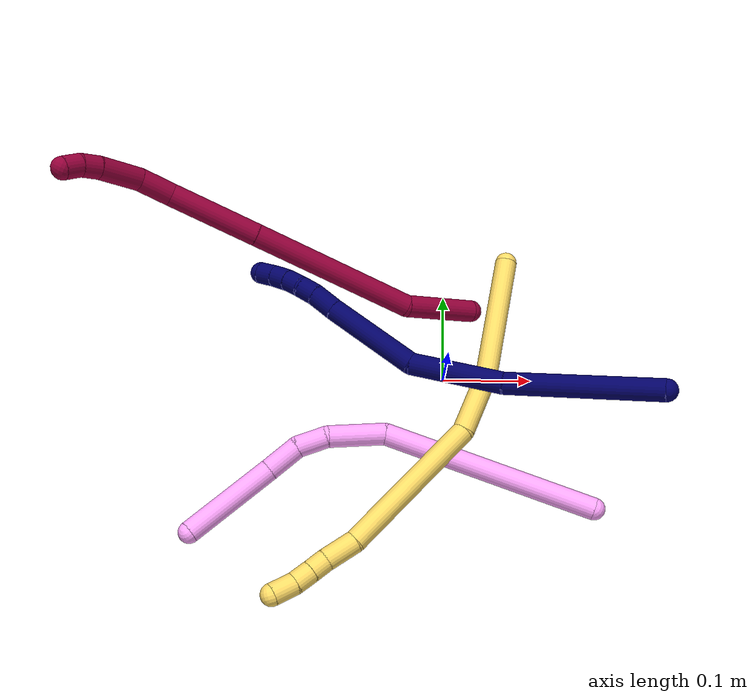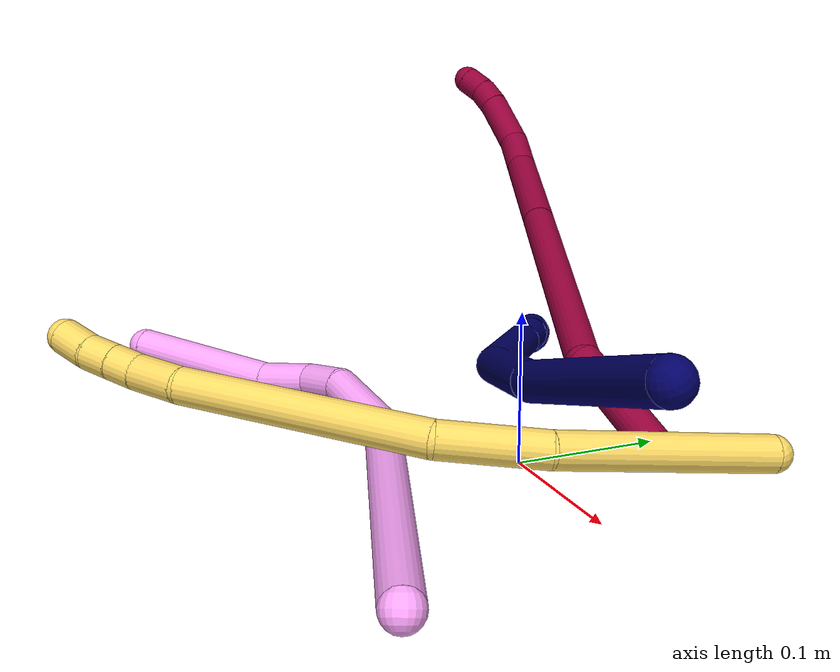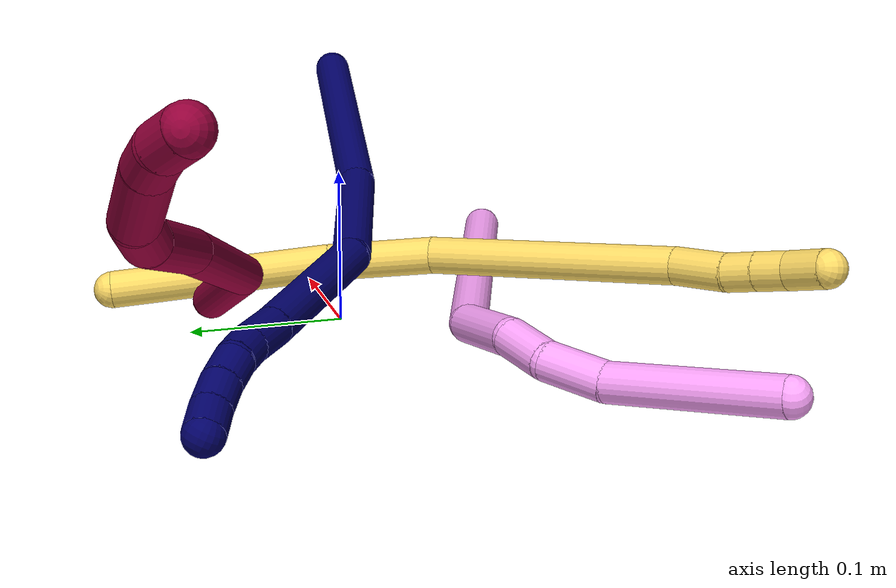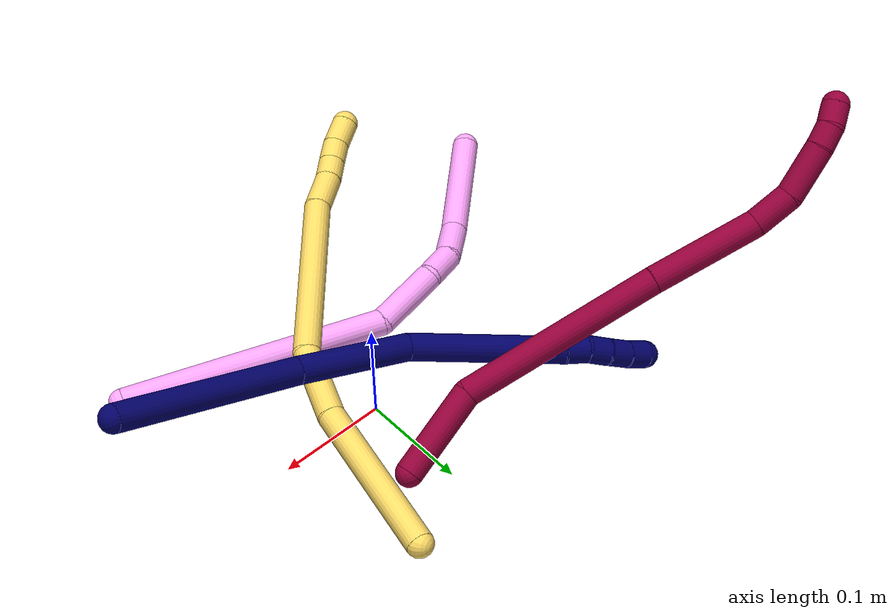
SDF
<sdf version="1.7">
 <world name="default">
  <model name="photoneo_s_sensor">
   <static>1</static>
   <pose>0 0 2 1.57079 1.57079 3.14159</pose>
   <link name="link">
    <inertial><mass>0.1</mass></inertial>
    <sensor name="sensor" type="depth">
     <update_rate>30</update_rate>
     <camera>
      <horizontal_fov>1.22</horizontal_fov>
      <image><width>1920</width><height>1200</height><format>B8G8R8</format></image>
      <clip><near>0.1</near><far>4</far></clip>
      <depth_camera><output>points</output></depth_camera>
     </camera>
     <plugin name="camera_plugin" filename="libgazebo_ros_depth_camera.so">
      <baseline>0.2</baseline>
      <alwaysOn>1</alwaysOn>
      <updateRate>0.0</updateRate>
      <cameraName>camera_ir</cameraName>
      <imageTopicName>/camera/color/image_raw</imageTopicName>
      <cameraInfoTopicName>/camera/color/camera_info</cameraInfoTopicName>
      <depthImageTopicName>/camera/depth/image_raw</depthImageTopicName>
      <depthImageCameraInfoTopicName>/camera/depth/camera_info</depthImageCameraInfoTopicName>
      <pointCloudTopicName>/camera/depth/points</pointCloudTopicName>
      <frameName>fr_optical</frameName>
      <pointCloudCutoff>0.1</pointCloudCutoff>
      <pointCloudCutoffMax>2.0</pointCloudCutoffMax>
      <distortionK1>0</distortionK1>
      <distortionK2>0</distortionK2>
      <distortionK3>0</distortionK3>
      <distortionT1>0</distortionT1>
      <distortionT2>0</distortionT2>
      <CxPrime>0</CxPrime>
      <Cx>0</Cx>
      <Cy>0</Cy>
      <focalLength>0</focalLength>
      <hackBaseline>0</hackBaseline>
     </plugin>
    </sensor>
   </link>
  </model>
  <model name="bin">
   <static>1</static>
   <link name="bottom">
    <collision name="collision-bottom">
     <pose>0 0 -0.01 0 -0 0</pose>
     <geometry><box><size>0.8 0.6 0.02</size></box></geometry>
     <surface>
      <friction><ode><mu>100</mu><mu2>100</mu2></ode></friction>
      <contact><collide_bitmask>65535</collide_bitmask></contact>
     </surface>
    </collision>
   </link>
   <link name="west_wall">
    <collision name="collision-west_wall">
     <pose>-0.41 0 0.1 0 -0 0</pose>
     <geometry><box><size>0.02 0.6 0.2</size></box></geometry>
     <surface>
      <friction><ode><mu>100</mu><mu2>100</mu2></ode></friction>
      <contact><collide_bitmask>65535</collide_bitmask></contact>
     </surface>
    </collision>
   </link>
   <link name="east_wall">
    <collision name="collision-east_wall">
     <pose>0.41 0 0.1 0 -0 0</pose>
     <geometry><box><size>0.02 0.6 0.2</size></box></geometry>
     <surface>
      <friction><ode><mu>100</mu><mu2>100</mu2></ode></friction>
      <contact><collide_bitmask>65535</collide_bitmask></contact>
     </surface>
    </collision>
   </link>
   <link name="south_wall">
    <collision name="collision-south_wall">
     <pose>0 -0.31 0.1 0 -0 0</pose>
     <geometry><box><size>0.8 0.02 0.2</size></box></geometry>
     <surface>
      <friction><ode><mu>100</mu><mu2>100</mu2></ode></friction>
      <contact><collide_bitmask>65535</collide_bitmask></contact>
     </surface>
    </collision>
   </link>
   <link name="north_wall">
    <collision name="collision-north_wall">
     <pose>0 0.31 0.1 0 -0 0</pose>
     <geometry><box><size>0.8 0.02 0.2</size></box></geometry>
     <surface>
      <friction><ode><mu>100</mu><mu2>100</mu2></ode></friction>
      <contact><collide_bitmask>65535</collide_bitmask></contact>
     </surface>
    </collision>
   </link>
  </model>
  <model name="4">
   <static>0</static>
   <link name="4">
    <collision name="collision-cylinder-e_1_1_4">
     <pose>-0.096848 0.048697 -0.05823 -2.44511 -0.906017 1.85997</pose>
     <geometry><cylinder><radius>0.0125</radius><length>0.246103</length></cylinder></geometry>
     <surface>
      <friction><ode><mu>1.16</mu><mu2>1.16</mu2><slip1>0</slip1><slip2>0</slip2></ode></friction>
      <contact><ode><kp>1e+06</kp><kd>1</kd><max_vel>0</max_vel><min_depth>0.001</min_depth></ode></contact>
     </surface>
    </collision>
    <visual name="visual-cylinder-e_1_1_4">
     <pose>-0.096848 0.048697 -0.05823 -2.44511 -0.906017 1.85997</pose>
     <geometry><cylinder><radius>0.0125</radius><length>0.246103</length></cylinder></geometry>
     <material><ambient>1 0.65098 0.996078 1</ambient></material>
    </visual>
    <collision name="collision-cylinder-e_2_4_5">
     <pose>-0.208356 0.120732 -0.134238 -2.22182 -0.463394 0.889077</pose>
     <geometry><cylinder><radius>0.0125</radius><length>0.065593</length></cylinder></geometry>
     <surface>
      <friction><ode><mu>1.16</mu><mu2>1.16</mu2><slip1>0</slip1><slip2>0</slip2></ode></friction>
      <contact><ode><kp>1e+06</kp><kd>1</kd><max_vel>0</max_vel><min_depth>0.001</min_depth></ode></contact>
     </surface>
    </collision>
    <visual name="visual-cylinder-e_2_4_5">
     <pose>-0.208356 0.120732 -0.134238 -2.22182 -0.463394 0.889077</pose>
     <geometry><cylinder><radius>0.0125</radius><length>0.065593</length></cylinder></geometry>
     <material><ambient>1 0.65098 0.996078 1</ambient></material>
    </visual>
    <collision name="collision-cylinder-e_3_5_6">
     <pose>-0.230423 0.159637 -0.155932 -1.81718 -0.432347 0.549117</pose>
     <geometry><cylinder><radius>0.0125</radius><length>0.035358</length></cylinder></geometry>
     <surface>
      <friction><ode><mu>1.16</mu><mu2>1.16</mu2><slip1>0</slip1><slip2>0</slip2></ode></friction>
      <contact><ode><kp>1e+06</kp><kd>1</kd><max_vel>0</max_vel><min_depth>0.001</min_depth></ode></contact>
     </surface>
    </collision>
    <visual name="visual-cylinder-e_3_5_6">
     <pose>-0.230423 0.159637 -0.155932 -1.81718 -0.432347 0.549117</pose>
     <geometry><cylinder><radius>0.0125</radius><length>0.035358</length></cylinder></geometry>
     <material><ambient>1 0.65098 0.996078 1</ambient></material>
    </visual>
    <collision name="collision-cylinder-e_4_6_7">
     <pose>-0.239839 0.195512 -0.161768 -1.66507 -0.098128 0.107826</pose>
     <geometry><cylinder><radius>0.0125</radius><length>0.040995</length></cylinder></geometry>
     <surface>
      <friction><ode><mu>1.16</mu><mu2>1.16</mu2><slip1>0</slip1><slip2>0</slip2></ode></friction>
      <contact><ode><kp>1e+06</kp><kd>1</kd><max_vel>0</max_vel><min_depth>0.001</min_depth></ode></contact>
     </surface>
    </collision>
    <visual name="visual-cylinder-e_4_6_7">
     <pose>-0.239839 0.195512 -0.161768 -1.66507 -0.098128 0.107826</pose>
     <geometry><cylinder><radius>0.0125</radius><length>0.040995</length></cylinder></geometry>
     <material><ambient>1 0.65098 0.996078 1</ambient></material>
    </visual>
    <collision name="collision-cylinder-e_5_7_2">
     <pose>-0.239338 0.269378 -0.179769 -1.86249 0.044829 -0.060259</pose>
     <geometry><cylinder><radius>0.0125</radius><length>0.111951</length></cylinder></geometry>
     <surface>
      <friction><ode><mu>1.16</mu><mu2>1.16</mu2><slip1>0</slip1><slip2>0</slip2></ode></friction>
      <contact><ode><kp>1e+06</kp><kd>1</kd><max_vel>0</max_vel><min_depth>0.001</min_depth></ode></contact>
     </surface>
    </collision>
    <visual name="visual-cylinder-e_5_7_2">
     <pose>-0.239338 0.269378 -0.179769 -1.86249 0.044829 -0.060259</pose>
     <geometry><cylinder><radius>0.0125</radius><length>0.111951</length></cylinder></geometry>
     <material><ambient>1 0.65098 0.996078 1</ambient></material>
    </visual>
    <collision name="collision-sphere-2">
     <pose>-0.23683 0.322935 -0.19585 0 -0 0</pose>
     <geometry><sphere><radius>0.0125</radius></sphere></geometry>
     <surface>
      <friction><ode><mu>1.16</mu><mu2>1.16</mu2><slip1>0</slip1><slip2>0</slip2></ode></friction>
      <contact><ode><kp>1e+06</kp><kd>1</kd><max_vel>0</max_vel><min_depth>0.001</min_depth></ode></contact>
     </surface>
    </collision>
    <visual name="visual-sphere-2">
     <pose>-0.23683 0.322935 -0.19585 0 -0 0</pose>
     <geometry><sphere><radius>0.0125</radius></sphere></geometry>
     <material><ambient>1 0.65098 0.996078 1</ambient></material>
    </visual>
    <collision name="collision-sphere-7">
     <pose>-0.241847 0.21582 -0.163688 0 -0 0</pose>
     <geometry><sphere><radius>0.0125</radius></sphere></geometry>
     <surface>
      <friction><ode><mu>1.16</mu><mu2>1.16</mu2><slip1>0</slip1><slip2>0</slip2></ode></friction>
      <contact><ode><kp>1e+06</kp><kd>1</kd><max_vel>0</max_vel><min_depth>0.001</min_depth></ode></contact>
     </surface>
    </collision>
    <visual name="visual-sphere-7">
     <pose>-0.241847 0.21582 -0.163688 0 -0 0</pose>
     <geometry><sphere><radius>0.0125</radius></sphere></geometry>
     <material><ambient>1 0.65098 0.996078 1</ambient></material>
    </visual>
    <collision name="collision-sphere-6">
     <pose>-0.23783 0.175204 -0.159847 0 -0 0</pose>
     <geometry><sphere><radius>0.0125</radius></sphere></geometry>
     <surface>
      <friction><ode><mu>1.16</mu><mu2>1.16</mu2><slip1>0</slip1><slip2>0</slip2></ode></friction>
      <contact><ode><kp>1e+06</kp><kd>1</kd><max_vel>0</max_vel><min_depth>0.001</min_depth></ode></contact>
     </surface>
    </collision>
    <visual name="visual-sphere-6">
     <pose>-0.23783 0.175204 -0.159847 0 -0 0</pose>
     <geometry><sphere><radius>0.0125</radius></sphere></geometry>
     <material><ambient>1 0.65098 0.996078 1</ambient></material>
    </visual>
    <collision name="collision-sphere-5">
     <pose>-0.223015 0.144069 -0.152017 0 -0 0</pose>
     <geometry><sphere><radius>0.0125</radius></sphere></geometry>
     <surface>
      <friction><ode><mu>1.16</mu><mu2>1.16</mu2><slip1>0</slip1><slip2>0</slip2></ode></friction>
      <contact><ode><kp>1e+06</kp><kd>1</kd><max_vel>0</max_vel><min_depth>0.001</min_depth></ode></contact>
     </surface>
    </collision>
    <visual name="visual-sphere-5">
     <pose>-0.223015 0.144069 -0.152017 0 -0 0</pose>
     <geometry><sphere><radius>0.0125</radius></sphere></geometry>
     <material><ambient>1 0.65098 0.996078 1</ambient></material>
    </visual>
    <collision name="collision-sphere-1">
     <geometry><sphere><radius>0.0125</radius></sphere></geometry>
     <surface>
      <friction><ode><mu>1.16</mu><mu2>1.16</mu2><slip1>0</slip1><slip2>0</slip2></ode></friction>
      <contact><ode><kp>1e+06</kp><kd>1</kd><max_vel>0</max_vel><min_depth>0.001</min_depth></ode></contact>
     </surface>
    </collision>
    <visual name="visual-sphere-1">
     <geometry><sphere><radius>0.0125</radius></sphere></geometry>
     <material><ambient>1 0.65098 0.996078 1</ambient></material>
    </visual>
    <collision name="collision-sphere-4">
     <pose>-0.193696 0.097394 -0.11646 0 -0 0</pose>
     <geometry><sphere><radius>0.0125</radius></sphere></geometry>
     <surface>
      <friction><ode><mu>1.16</mu><mu2>1.16</mu2><slip1>0</slip1><slip2>0</slip2></ode></friction>
      <contact><ode><kp>1e+06</kp><kd>1</kd><max_vel>0</max_vel><min_depth>0.001</min_depth></ode></contact>
     </surface>
    </collision>
    <visual name="visual-sphere-4">
     <pose>-0.193696 0.097394 -0.11646 0 -0 0</pose>
     <geometry><sphere><radius>0.0125</radius></sphere></geometry>
     <material><ambient>1 0.65098 0.996078 1</ambient></material>
    </visual>
    <inertial>
     <pose>-0.16455 0.12744 -0.110812 0 -0 0</pose>
     <mass>0.5</mass>
     <inertia>
      <ixx>0.000662</ixx>
      <ixy>0</ixy>
      <ixz>0</ixz>
      <iyy>0.001621</iyy>
      <iyz>0</iyz>
      <izz>0.000337</izz>
     </inertia>
    </inertial>
   </link>
   <pose>0.165915 -0.15013 0.012464 -2.95308 -0.465227 -0.83789</pose>
  </model>
  <model name="5">
   <static>0</static>
   <link name="5">
    <collision name="collision-cylinder-e_1_1_4">
     <pose>-0.009115 -0.039124 0.061988 0.563012 -0.123715 -0.035818</pose>
     <geometry><cylinder><radius>0.0125</radius><length>0.147733</length></cylinder></geometry>
     <surface>
      <friction><ode><mu>1.16</mu><mu2>1.16</mu2><slip1>0</slip1><slip2>0</slip2></ode></friction>
      <contact><ode><kp>1e+06</kp><kd>1</kd><max_vel>0</max_vel><min_depth>0.001</min_depth></ode></contact>
     </surface>
    </collision>
    <visual name="visual-cylinder-e_1_1_4">
     <pose>-0.009115 -0.039124 0.061988 0.563012 -0.123715 -0.035818</pose>
     <geometry><cylinder><radius>0.0125</radius><length>0.147733</length></cylinder></geometry>
     <material><ambient>1 0.858824 0.4 1</ambient></material>
    </visual>
    <collision name="collision-cylinder-e_2_4_5">
     <pose>-0.020016 -0.102823 0.15022 0.752575 -0.049632 -0.019614</pose>
     <geometry><cylinder><radius>0.0125</radius><length>0.071996</length></cylinder></geometry>
     <surface>
      <friction><ode><mu>1.16</mu><mu2>1.16</mu2><slip1>0</slip1><slip2>0</slip2></ode></friction>
      <contact><ode><kp>1e+06</kp><kd>1</kd><max_vel>0</max_vel><min_depth>0.001</min_depth></ode></contact>
     </surface>
    </collision>
    <visual name="visual-cylinder-e_2_4_5">
     <pose>-0.020016 -0.102823 0.15022 0.752575 -0.049632 -0.019614</pose>
     <geometry><cylinder><radius>0.0125</radius><length>0.071996</length></cylinder></geometry>
     <material><ambient>1 0.858824 0.4 1</ambient></material>
    </visual>
    <collision name="collision-cylinder-e_3_5_6">
     <pose>-0.014124 -0.203991 0.216793 1.08613 0.08847 0.053423</pose>
     <geometry><cylinder><radius>0.0125</radius><length>0.173804</length></cylinder></geometry>
     <surface>
      <friction><ode><mu>1.16</mu><mu2>1.16</mu2><slip1>0</slip1><slip2>0</slip2></ode></friction>
      <contact><ode><kp>1e+06</kp><kd>1</kd><max_vel>0</max_vel><min_depth>0.001</min_depth></ode></contact>
     </surface>
    </collision>
    <visual name="visual-cylinder-e_3_5_6">
     <pose>-0.014124 -0.203991 0.216793 1.08613 0.08847 0.053423</pose>
     <geometry><cylinder><radius>0.0125</radius><length>0.173804</length></cylinder></geometry>
     <material><ambient>1 0.858824 0.4 1</ambient></material>
    </visual>
    <collision name="collision-cylinder-e_4_6_7">
     <pose>-0.003203 -0.29834 0.262091 1.29804 0.174094 0.13222</pose>
     <geometry><cylinder><radius>0.0125</radius><length>0.037443</length></cylinder></geometry>
     <surface>
      <friction><ode><mu>1.16</mu><mu2>1.16</mu2><slip1>0</slip1><slip2>0</slip2></ode></friction>
      <contact><ode><kp>1e+06</kp><kd>1</kd><max_vel>0</max_vel><min_depth>0.001</min_depth></ode></contact>
     </surface>
    </collision>
    <visual name="visual-cylinder-e_4_6_7">
     <pose>-0.003203 -0.29834 0.262091 1.29804 0.174094 0.13222</pose>
     <geometry><cylinder><radius>0.0125</radius><length>0.037443</length></cylinder></geometry>
     <material><ambient>1 0.858824 0.4 1</ambient></material>
    </visual>
    <collision name="collision-cylinder-e_5_7_8">
     <pose>0.000216 -0.325795 0.270419 1.23717 0.017141 0.012201</pose>
     <geometry><cylinder><radius>0.0125</radius><length>0.02053</length></cylinder></geometry>
     <surface>
      <friction><ode><mu>1.16</mu><mu2>1.16</mu2><slip1>0</slip1><slip2>0</slip2></ode></friction>
      <contact><ode><kp>1e+06</kp><kd>1</kd><max_vel>0</max_vel><min_depth>0.001</min_depth></ode></contact>
     </surface>
    </collision>
    <visual name="visual-cylinder-e_5_7_8">
     <pose>0.000216 -0.325795 0.270419 1.23717 0.017141 0.012201</pose>
     <geometry><cylinder><radius>0.0125</radius><length>0.02053</length></cylinder></geometry>
     <material><ambient>1 0.858824 0.4 1</ambient></material>
    </visual>
    <collision name="collision-cylinder-e_6_8_9">
     <pose>0.000751 -0.345703 0.277118 1.2548 0.033436 0.024247</pose>
     <geometry><cylinder><radius>0.0125</radius><length>0.021498</length></cylinder></geometry>
     <surface>
      <friction><ode><mu>1.16</mu><mu2>1.16</mu2><slip1>0</slip1><slip2>0</slip2></ode></friction>
      <contact><ode><kp>1e+06</kp><kd>1</kd><max_vel>0</max_vel><min_depth>0.001</min_depth></ode></contact>
     </surface>
    </collision>
    <visual name="visual-cylinder-e_6_8_9">
     <pose>0.000751 -0.345703 0.277118 1.2548 0.033436 0.024247</pose>
     <geometry><cylinder><radius>0.0125</radius><length>0.021498</length></cylinder></geometry>
     <material><ambient>1 0.858824 0.4 1</ambient></material>
    </visual>
    <collision name="collision-cylinder-e_7_9_2">
     <pose>0.001454 -0.369272 0.28237 1.42852 0.025457 0.02207</pose>
     <geometry><cylinder><radius>0.0125</radius><length>0.026997</length></cylinder></geometry>
     <surface>
      <friction><ode><mu>1.16</mu><mu2>1.16</mu2><slip1>0</slip1><slip2>0</slip2></ode></friction>
      <contact><ode><kp>1e+06</kp><kd>1</kd><max_vel>0</max_vel><min_depth>0.001</min_depth></ode></contact>
     </surface>
    </collision>
    <visual name="visual-cylinder-e_7_9_2">
     <pose>0.001454 -0.369272 0.28237 1.42852 0.025457 0.02207</pose>
     <geometry><cylinder><radius>0.0125</radius><length>0.026997</length></cylinder></geometry>
     <material><ambient>1 0.858824 0.4 1</ambient></material>
    </visual>
    <collision name="collision-sphere-2">
     <pose>0.001798 -0.382629 0.284284 0 -0 0</pose>
     <geometry><sphere><radius>0.0125</radius></sphere></geometry>
     <surface>
      <friction><ode><mu>1.16</mu><mu2>1.16</mu2><slip1>0</slip1><slip2>0</slip2></ode></friction>
      <contact><ode><kp>1e+06</kp><kd>1</kd><max_vel>0</max_vel><min_depth>0.001</min_depth></ode></contact>
     </surface>
    </collision>
    <visual name="visual-sphere-2">
     <pose>0.001798 -0.382629 0.284284 0 -0 0</pose>
     <geometry><sphere><radius>0.0125</radius></sphere></geometry>
     <material><ambient>1 0.858824 0.4 1</ambient></material>
    </visual>
    <collision name="collision-sphere-9">
     <pose>0.001111 -0.355914 0.280457 0 -0 0</pose>
     <geometry><sphere><radius>0.0125</radius></sphere></geometry>
     <surface>
      <friction><ode><mu>1.16</mu><mu2>1.16</mu2><slip1>0</slip1><slip2>0</slip2></ode></friction>
      <contact><ode><kp>1e+06</kp><kd>1</kd><max_vel>0</max_vel><min_depth>0.001</min_depth></ode></contact>
     </surface>
    </collision>
    <visual name="visual-sphere-9">
     <pose>0.001111 -0.355914 0.280457 0 -0 0</pose>
     <geometry><sphere><radius>0.0125</radius></sphere></geometry>
     <material><ambient>1 0.858824 0.4 1</ambient></material>
    </visual>
    <collision name="collision-sphere-4">
     <pose>-0.01823 -0.078248 0.123976 0 -0 0</pose>
     <geometry><sphere><radius>0.0125</radius></sphere></geometry>
     <surface>
      <friction><ode><mu>1.16</mu><mu2>1.16</mu2><slip1>0</slip1><slip2>0</slip2></ode></friction>
      <contact><ode><kp>1e+06</kp><kd>1</kd><max_vel>0</max_vel><min_depth>0.001</min_depth></ode></contact>
     </surface>
    </collision>
    <visual name="visual-sphere-4">
     <pose>-0.01823 -0.078248 0.123976 0 -0 0</pose>
     <geometry><sphere><radius>0.0125</radius></sphere></geometry>
     <material><ambient>1 0.858824 0.4 1</ambient></material>
    </visual>
    <collision name="collision-sphere-1">
     <geometry><sphere><radius>0.0125</radius></sphere></geometry>
     <surface>
      <friction><ode><mu>1.16</mu><mu2>1.16</mu2><slip1>0</slip1><slip2>0</slip2></ode></friction>
      <contact><ode><kp>1e+06</kp><kd>1</kd><max_vel>0</max_vel><min_depth>0.001</min_depth></ode></contact>
     </surface>
    </collision>
    <visual name="visual-sphere-1">
     <geometry><sphere><radius>0.0125</radius></sphere></geometry>
     <material><ambient>1 0.858824 0.4 1</ambient></material>
    </visual>
    <collision name="collision-sphere-8">
     <pose>0.000392 -0.335492 0.27378 0 -0 0</pose>
     <geometry><sphere><radius>0.0125</radius></sphere></geometry>
     <surface>
      <friction><ode><mu>1.16</mu><mu2>1.16</mu2><slip1>0</slip1><slip2>0</slip2></ode></friction>
      <contact><ode><kp>1e+06</kp><kd>1</kd><max_vel>0</max_vel><min_depth>0.001</min_depth></ode></contact>
     </surface>
    </collision>
    <visual name="visual-sphere-8">
     <pose>0.000392 -0.335492 0.27378 0 -0 0</pose>
     <geometry><sphere><radius>0.0125</radius></sphere></geometry>
     <material><ambient>1 0.858824 0.4 1</ambient></material>
    </visual>
    <collision name="collision-sphere-5">
     <pose>-0.021802 -0.127398 0.176463 0 -0 0</pose>
     <geometry><sphere><radius>0.0125</radius></sphere></geometry>
     <surface>
      <friction><ode><mu>1.16</mu><mu2>1.16</mu2><slip1>0</slip1><slip2>0</slip2></ode></friction>
      <contact><ode><kp>1e+06</kp><kd>1</kd><max_vel>0</max_vel><min_depth>0.001</min_depth></ode></contact>
     </surface>
    </collision>
    <visual name="visual-sphere-5">
     <pose>-0.021802 -0.127398 0.176463 0 -0 0</pose>
     <geometry><sphere><radius>0.0125</radius></sphere></geometry>
     <material><ambient>1 0.858824 0.4 1</ambient></material>
    </visual>
    <collision name="collision-sphere-6">
     <pose>-0.006446 -0.280584 0.257124 0 -0 0</pose>
     <geometry><sphere><radius>0.0125</radius></sphere></geometry>
     <surface>
      <friction><ode><mu>1.16</mu><mu2>1.16</mu2><slip1>0</slip1><slip2>0</slip2></ode></friction>
      <contact><ode><kp>1e+06</kp><kd>1</kd><max_vel>0</max_vel><min_depth>0.001</min_depth></ode></contact>
     </surface>
    </collision>
    <visual name="visual-sphere-6">
     <pose>-0.006446 -0.280584 0.257124 0 -0 0</pose>
     <geometry><sphere><radius>0.0125</radius></sphere></geometry>
     <material><ambient>1 0.858824 0.4 1</ambient></material>
    </visual>
    <collision name="collision-sphere-7">
     <pose>4e-05 -0.316097 0.267058 0 -0 0</pose>
     <geometry><sphere><radius>0.0125</radius></sphere></geometry>
     <surface>
      <friction><ode><mu>1.16</mu><mu2>1.16</mu2><slip1>0</slip1><slip2>0</slip2></ode></friction>
      <contact><ode><kp>1e+06</kp><kd>1</kd><max_vel>0</max_vel><min_depth>0.001</min_depth></ode></contact>
     </surface>
    </collision>
    <visual name="visual-sphere-7">
     <pose>4e-05 -0.316097 0.267058 0 -0 0</pose>
     <geometry><sphere><radius>0.0125</radius></sphere></geometry>
     <material><ambient>1 0.858824 0.4 1</ambient></material>
    </visual>
    <inertial>
     <pose>-0.010605 -0.167795 0.173196 0 -0 0</pose>
     <mass>0.5</mass>
     <inertia>
      <ixx>0.000774</ixx>
      <ixy>0</ixy>
      <ixz>0</ixz>
      <iyy>0.000453</iyy>
      <iyz>0</iyz>
      <izz>0.000589</izz>
     </inertia>
    </inertial>
   </link>
   <pose>0.073555 0.141653 0.01158 -2.17748 1.20489 2.87647</pose>
  </model>
  <model name="7">
   <static>0</static>
   <link name="7">
    <collision name="collision-cylinder-e_1_1_4">
     <pose>0.011666 0.079956 0.031009 -1.20083 0.135202 -0.092654</pose>
     <geometry><cylinder><radius>0.0125</radius><length>0.173097</length></cylinder></geometry>
     <surface>
      <friction><ode><mu>1.16</mu><mu2>1.16</mu2><slip1>0</slip1><slip2>0</slip2></ode></friction>
      <contact><ode><kp>1e+06</kp><kd>1</kd><max_vel>0</max_vel><min_depth>0.001</min_depth></ode></contact>
     </surface>
    </collision>
    <visual name="visual-cylinder-e_1_1_4">
     <pose>0.011666 0.079956 0.031009 -1.20083 0.135202 -0.092654</pose>
     <geometry><cylinder><radius>0.0125</radius><length>0.173097</length></cylinder></geometry>
     <material><ambient>0.003922 0 0.403922 1</ambient></material>
    </visual>
    <collision name="collision-cylinder-e_2_4_5">
     <pose>0.021654 0.209803 0.080172 -1.22182 -0.031597 0.022127</pose>
     <geometry><cylinder><radius>0.0125</radius><length>0.106235</length></cylinder></geometry>
     <surface>
      <friction><ode><mu>1.16</mu><mu2>1.16</mu2><slip1>0</slip1><slip2>0</slip2></ode></friction>
      <contact><ode><kp>1e+06</kp><kd>1</kd><max_vel>0</max_vel><min_depth>0.001</min_depth></ode></contact>
     </surface>
    </collision>
    <visual name="visual-cylinder-e_2_4_5">
     <pose>0.021654 0.209803 0.080172 -1.22182 -0.031597 0.022127</pose>
     <geometry><cylinder><radius>0.0125</radius><length>0.106235</length></cylinder></geometry>
     <material><ambient>0.003922 0 0.403922 1</ambient></material>
    </visual>
    <collision name="collision-cylinder-e_3_5_6">
     <pose>-0.001998 0.305266 0.121586 -1.09886 -0.405651 0.250533</pose>
     <geometry><cylinder><radius>0.0125</radius><length>0.111368</length></cylinder></geometry>
     <surface>
      <friction><ode><mu>1.16</mu><mu2>1.16</mu2><slip1>0</slip1><slip2>0</slip2></ode></friction>
      <contact><ode><kp>1e+06</kp><kd>1</kd><max_vel>0</max_vel><min_depth>0.001</min_depth></ode></contact>
     </surface>
    </collision>
    <visual name="visual-cylinder-e_3_5_6">
     <pose>-0.001998 0.305266 0.121586 -1.09886 -0.405651 0.250533</pose>
     <geometry><cylinder><radius>0.0125</radius><length>0.111368</length></cylinder></geometry>
     <material><ambient>0.003922 0 0.403922 1</ambient></material>
    </visual>
    <collision name="collision-cylinder-e_4_6_7">
     <pose>-0.030457 0.362536 0.150653 -1.11004 -0.460881 0.288902</pose>
     <geometry><cylinder><radius>0.0125</radius><length>0.029163</length></cylinder></geometry>
     <surface>
      <friction><ode><mu>1.16</mu><mu2>1.16</mu2><slip1>0</slip1><slip2>0</slip2></ode></friction>
      <contact><ode><kp>1e+06</kp><kd>1</kd><max_vel>0</max_vel><min_depth>0.001</min_depth></ode></contact>
     </surface>
    </collision>
    <visual name="visual-cylinder-e_4_6_7">
     <pose>-0.030457 0.362536 0.150653 -1.11004 -0.460881 0.288902</pose>
     <geometry><cylinder><radius>0.0125</radius><length>0.029163</length></cylinder></geometry>
     <material><ambient>0.003922 0 0.403922 1</ambient></material>
    </visual>
    <collision name="collision-cylinder-e_5_7_8">
     <pose>-0.040181 0.382966 0.160274 -1.15896 -0.327736 0.215581</pose>
     <geometry><cylinder><radius>0.0125</radius><length>0.020129</length></cylinder></geometry>
     <surface>
      <friction><ode><mu>1.16</mu><mu2>1.16</mu2><slip1>0</slip1><slip2>0</slip2></ode></friction>
      <contact><ode><kp>1e+06</kp><kd>1</kd><max_vel>0</max_vel><min_depth>0.001</min_depth></ode></contact>
     </surface>
    </collision>
    <visual name="visual-cylinder-e_5_7_8">
     <pose>-0.040181 0.382966 0.160274 -1.15896 -0.327736 0.215581</pose>
     <geometry><cylinder><radius>0.0125</radius><length>0.020129</length></cylinder></geometry>
     <material><ambient>0.003922 0 0.403922 1</ambient></material>
    </visual>
    <collision name="collision-cylinder-e_6_8_9">
     <pose>-0.045531 0.399535 0.169936 -0.929709 -0.212514 0.106879</pose>
     <geometry><cylinder><radius>0.0125</radius><length>0.020007</length></cylinder></geometry>
     <surface>
      <friction><ode><mu>1.16</mu><mu2>1.16</mu2><slip1>0</slip1><slip2>0</slip2></ode></friction>
      <contact><ode><kp>1e+06</kp><kd>1</kd><max_vel>0</max_vel><min_depth>0.001</min_depth></ode></contact>
     </surface>
    </collision>
    <visual name="visual-cylinder-e_6_8_9">
     <pose>-0.045531 0.399535 0.169936 -0.929709 -0.212514 0.106879</pose>
     <geometry><cylinder><radius>0.0125</radius><length>0.020007</length></cylinder></geometry>
     <material><ambient>0.003922 0 0.403922 1</ambient></material>
    </visual>
    <collision name="collision-cylinder-e_7_9_10">
     <pose>-0.048623 0.415376 0.181697 -0.934637 -0.098341 0.049653</pose>
     <geometry><cylinder><radius>0.0125</radius><length>0.02</length></cylinder></geometry>
     <surface>
      <friction><ode><mu>1.16</mu><mu2>1.16</mu2><slip1>0</slip1><slip2>0</slip2></ode></friction>
      <contact><ode><kp>1e+06</kp><kd>1</kd><max_vel>0</max_vel><min_depth>0.001</min_depth></ode></contact>
     </surface>
    </collision>
    <visual name="visual-cylinder-e_7_9_10">
     <pose>-0.048623 0.415376 0.181697 -0.934637 -0.098341 0.049653</pose>
     <geometry><cylinder><radius>0.0125</radius><length>0.02</length></cylinder></geometry>
     <material><ambient>0.003922 0 0.403922 1</ambient></material>
    </visual>
    <collision name="collision-cylinder-e_8_10_2">
     <pose>-0.049935 0.431884 0.192864 -1.01727 -0.03301 0.018407</pose>
     <geometry><cylinder><radius>0.0125</radius><length>0.020002</length></cylinder></geometry>
     <surface>
      <friction><ode><mu>1.16</mu><mu2>1.16</mu2><slip1>0</slip1><slip2>0</slip2></ode></friction>
      <contact><ode><kp>1e+06</kp><kd>1</kd><max_vel>0</max_vel><min_depth>0.001</min_depth></ode></contact>
     </surface>
    </collision>
    <visual name="visual-cylinder-e_8_10_2">
     <pose>-0.049935 0.431884 0.192864 -1.01727 -0.03301 0.018407</pose>
     <geometry><cylinder><radius>0.0125</radius><length>0.020002</length></cylinder></geometry>
     <material><ambient>0.003922 0 0.403922 1</ambient></material>
    </visual>
    <collision name="collision-sphere-2">
     <pose>-0.050265 0.440387 0.198118 0 -0 0</pose>
     <geometry><sphere><radius>0.0125</radius></sphere></geometry>
     <surface>
      <friction><ode><mu>1.16</mu><mu2>1.16</mu2><slip1>0</slip1><slip2>0</slip2></ode></friction>
      <contact><ode><kp>1e+06</kp><kd>1</kd><max_vel>0</max_vel><min_depth>0.001</min_depth></ode></contact>
     </surface>
    </collision>
    <visual name="visual-sphere-2">
     <pose>-0.050265 0.440387 0.198118 0 -0 0</pose>
     <geometry><sphere><radius>0.0125</radius></sphere></geometry>
     <material><ambient>0.003922 0 0.403922 1</ambient></material>
    </visual>
    <collision name="collision-sphere-10">
     <pose>-0.049605 0.423381 0.187609 0 -0 0</pose>
     <geometry><sphere><radius>0.0125</radius></sphere></geometry>
     <surface>
      <friction><ode><mu>1.16</mu><mu2>1.16</mu2><slip1>0</slip1><slip2>0</slip2></ode></friction>
      <contact><ode><kp>1e+06</kp><kd>1</kd><max_vel>0</max_vel><min_depth>0.001</min_depth></ode></contact>
     </surface>
    </collision>
    <visual name="visual-sphere-10">
     <pose>-0.049605 0.423381 0.187609 0 -0 0</pose>
     <geometry><sphere><radius>0.0125</radius></sphere></geometry>
     <material><ambient>0.003922 0 0.403922 1</ambient></material>
    </visual>
    <collision name="collision-sphere-9">
     <pose>-0.047641 0.407371 0.175784 0 -0 0</pose>
     <geometry><sphere><radius>0.0125</radius></sphere></geometry>
     <surface>
      <friction><ode><mu>1.16</mu><mu2>1.16</mu2><slip1>0</slip1><slip2>0</slip2></ode></friction>
      <contact><ode><kp>1e+06</kp><kd>1</kd><max_vel>0</max_vel><min_depth>0.001</min_depth></ode></contact>
     </surface>
    </collision>
    <visual name="visual-sphere-9">
     <pose>-0.047641 0.407371 0.175784 0 -0 0</pose>
     <geometry><sphere><radius>0.0125</radius></sphere></geometry>
     <material><ambient>0.003922 0 0.403922 1</ambient></material>
    </visual>
    <collision name="collision-sphere-4">
     <pose>0.023332 0.159912 0.062018 0 -0 0</pose>
     <geometry><sphere><radius>0.0125</radius></sphere></geometry>
     <surface>
      <friction><ode><mu>1.16</mu><mu2>1.16</mu2><slip1>0</slip1><slip2>0</slip2></ode></friction>
      <contact><ode><kp>1e+06</kp><kd>1</kd><max_vel>0</max_vel><min_depth>0.001</min_depth></ode></contact>
     </surface>
    </collision>
    <visual name="visual-sphere-4">
     <pose>0.023332 0.159912 0.062018 0 -0 0</pose>
     <geometry><sphere><radius>0.0125</radius></sphere></geometry>
     <material><ambient>0.003922 0 0.403922 1</ambient></material>
    </visual>
    <collision name="collision-sphere-1">
     <geometry><sphere><radius>0.0125</radius></sphere></geometry>
     <surface>
      <friction><ode><mu>1.16</mu><mu2>1.16</mu2><slip1>0</slip1><slip2>0</slip2></ode></friction>
      <contact><ode><kp>1e+06</kp><kd>1</kd><max_vel>0</max_vel><min_depth>0.001</min_depth></ode></contact>
     </surface>
    </collision>
    <visual name="visual-sphere-1">
     <geometry><sphere><radius>0.0125</radius></sphere></geometry>
     <material><ambient>0.003922 0 0.403922 1</ambient></material>
    </visual>
    <collision name="collision-sphere-8">
     <pose>-0.043421 0.391698 0.164088 0 -0 0</pose>
     <geometry><sphere><radius>0.0125</radius></sphere></geometry>
     <surface>
      <friction><ode><mu>1.16</mu><mu2>1.16</mu2><slip1>0</slip1><slip2>0</slip2></ode></friction>
      <contact><ode><kp>1e+06</kp><kd>1</kd><max_vel>0</max_vel><min_depth>0.001</min_depth></ode></contact>
     </surface>
    </collision>
    <visual name="visual-sphere-8">
     <pose>-0.043421 0.391698 0.164088 0 -0 0</pose>
     <geometry><sphere><radius>0.0125</radius></sphere></geometry>
     <material><ambient>0.003922 0 0.403922 1</ambient></material>
    </visual>
    <collision name="collision-sphere-5">
     <pose>0.019976 0.259694 0.098326 0 -0 0</pose>
     <geometry><sphere><radius>0.0125</radius></sphere></geometry>
     <surface>
      <friction><ode><mu>1.16</mu><mu2>1.16</mu2><slip1>0</slip1><slip2>0</slip2></ode></friction>
      <contact><ode><kp>1e+06</kp><kd>1</kd><max_vel>0</max_vel><min_depth>0.001</min_depth></ode></contact>
     </surface>
    </collision>
    <visual name="visual-sphere-5">
     <pose>0.019976 0.259694 0.098326 0 -0 0</pose>
     <geometry><sphere><radius>0.0125</radius></sphere></geometry>
     <material><ambient>0.003922 0 0.403922 1</ambient></material>
    </visual>
    <collision name="collision-sphere-6">
     <pose>-0.023972 0.350838 0.144846 0 -0 0</pose>
     <geometry><sphere><radius>0.0125</radius></sphere></geometry>
     <surface>
      <friction><ode><mu>1.16</mu><mu2>1.16</mu2><slip1>0</slip1><slip2>0</slip2></ode></friction>
      <contact><ode><kp>1e+06</kp><kd>1</kd><max_vel>0</max_vel><min_depth>0.001</min_depth></ode></contact>
     </surface>
    </collision>
    <visual name="visual-sphere-6">
     <pose>-0.023972 0.350838 0.144846 0 -0 0</pose>
     <geometry><sphere><radius>0.0125</radius></sphere></geometry>
     <material><ambient>0.003922 0 0.403922 1</ambient></material>
    </visual>
    <collision name="collision-sphere-7">
     <pose>-0.036942 0.374234 0.156459 0 -0 0</pose>
     <geometry><sphere><radius>0.0125</radius></sphere></geometry>
     <surface>
      <friction><ode><mu>1.16</mu><mu2>1.16</mu2><slip1>0</slip1><slip2>0</slip2></ode></friction>
      <contact><ode><kp>1e+06</kp><kd>1</kd><max_vel>0</max_vel><min_depth>0.001</min_depth></ode></contact>
     </surface>
    </collision>
    <visual name="visual-sphere-7">
     <pose>-0.036942 0.374234 0.156459 0 -0 0</pose>
     <geometry><sphere><radius>0.0125</radius></sphere></geometry>
     <material><ambient>0.003922 0 0.403922 1</ambient></material>
    </visual>
    <inertial>
     <pose>-0.000964 0.226692 0.091873 0 -0 0</pose>
     <mass>0.5</mass>
     <inertia>
      <ixx>0.000639</ixx>
      <ixy>0</ixy>
      <ixz>0</ixz>
      <iyy>0.000292</iyy>
      <iyz>0</iyz>
      <izz>-0.000599</izz>
     </inertia>
    </inertial>
   </link>
   <pose>0.224836 -0.047472 0.129432 3.04902 0.467627 -1.69673</pose>
  </model>
  <model name="8">
   <static>0</static>
   <link name="8">
    <collision name="collision-cylinder-e_1_1_4">
     <pose>-0.018883 0.007262 0.037089 -0.193357 -0.463362 0.045751</pose>
     <geometry><cylinder><radius>0.0125</radius><length>0.084496</length></cylinder></geometry>
     <surface>
      <friction><ode><mu>1.16</mu><mu2>1.16</mu2><slip1>0</slip1><slip2>0</slip2></ode></friction>
      <contact><ode><kp>1e+06</kp><kd>1</kd><max_vel>0</max_vel><min_depth>0.001</min_depth></ode></contact>
     </surface>
    </collision>
    <visual name="visual-cylinder-e_1_1_4">
     <pose>-0.018883 0.007262 0.037089 -0.193357 -0.463362 0.045751</pose>
     <geometry><cylinder><radius>0.0125</radius><length>0.084496</length></cylinder></geometry>
     <material><ambient>0.584314 0 0.227451 1</ambient></material>
    </visual>
    <collision name="collision-cylinder-e_2_4_5">
     <pose>-0.048288 0.010069 0.167222 0.047845 -0.112474 -0.002694</pose>
     <geometry><cylinder><radius>0.0125</radius><length>0.187486</length></cylinder></geometry>
     <surface>
      <friction><ode><mu>1.16</mu><mu2>1.16</mu2><slip1>0</slip1><slip2>0</slip2></ode></friction>
      <contact><ode><kp>1e+06</kp><kd>1</kd><max_vel>0</max_vel><min_depth>0.001</min_depth></ode></contact>
     </surface>
    </collision>
    <visual name="visual-cylinder-e_2_4_5">
     <pose>-0.048288 0.010069 0.167222 0.047845 -0.112474 -0.002694</pose>
     <geometry><cylinder><radius>0.0125</radius><length>0.187486</length></cylinder></geometry>
     <material><ambient>0.584314 0 0.227451 1</ambient></material>
    </visual>
    <collision name="collision-cylinder-e_3_5_6">
     <pose>-0.062437 0.003966 0.310864 0.032554 -0.071541 -0.001165</pose>
     <geometry><cylinder><radius>0.0125</radius><length>0.101508</length></cylinder></geometry>
     <surface>
      <friction><ode><mu>1.16</mu><mu2>1.16</mu2><slip1>0</slip1><slip2>0</slip2></ode></friction>
      <contact><ode><kp>1e+06</kp><kd>1</kd><max_vel>0</max_vel><min_depth>0.001</min_depth></ode></contact>
     </surface>
    </collision>
    <visual name="visual-cylinder-e_3_5_6">
     <pose>-0.062437 0.003966 0.310864 0.032554 -0.071541 -0.001165</pose>
     <geometry><cylinder><radius>0.0125</radius><length>0.101508</length></cylinder></geometry>
     <material><ambient>0.584314 0 0.227451 1</ambient></material>
    </visual>
    <collision name="collision-cylinder-e_4_6_7">
     <pose>-0.071076 0.000322 0.379353 0.111145 -0.271489 -0.015196</pose>
     <geometry><cylinder><radius>0.0125</radius><length>0.037375</length></cylinder></geometry>
     <surface>
      <friction><ode><mu>1.16</mu><mu2>1.16</mu2><slip1>0</slip1><slip2>0</slip2></ode></friction>
      <contact><ode><kp>1e+06</kp><kd>1</kd><max_vel>0</max_vel><min_depth>0.001</min_depth></ode></contact>
     </surface>
    </collision>
    <visual name="visual-cylinder-e_4_6_7">
     <pose>-0.071076 0.000322 0.379353 0.111145 -0.271489 -0.015196</pose>
     <geometry><cylinder><radius>0.0125</radius><length>0.037375</length></cylinder></geometry>
     <material><ambient>0.584314 0 0.227451 1</ambient></material>
    </visual>
    <collision name="collision-cylinder-e_5_7_8">
     <pose>-0.08985 -0.002648 0.417169 0.048794 -0.603932 -0.015202</pose>
     <geometry><cylinder><radius>0.0125</radius><length>0.04847</length></cylinder></geometry>
     <surface>
      <friction><ode><mu>1.16</mu><mu2>1.16</mu2><slip1>0</slip1><slip2>0</slip2></ode></friction>
      <contact><ode><kp>1e+06</kp><kd>1</kd><max_vel>0</max_vel><min_depth>0.001</min_depth></ode></contact>
     </surface>
    </collision>
    <visual name="visual-cylinder-e_5_7_8">
     <pose>-0.08985 -0.002648 0.417169 0.048794 -0.603932 -0.015202</pose>
     <geometry><cylinder><radius>0.0125</radius><length>0.04847</length></cylinder></geometry>
     <material><ambient>0.584314 0 0.227451 1</ambient></material>
    </visual>
    <collision name="collision-cylinder-e_6_8_9">
     <pose>-0.109776 -0.002667 0.445302 -0.11563 -0.640779 0.038407</pose>
     <geometry><cylinder><radius>0.0125</radius><length>0.020619</length></cylinder></geometry>
     <surface>
      <friction><ode><mu>1.16</mu><mu2>1.16</mu2><slip1>0</slip1><slip2>0</slip2></ode></friction>
      <contact><ode><kp>1e+06</kp><kd>1</kd><max_vel>0</max_vel><min_depth>0.001</min_depth></ode></contact>
     </surface>
    </collision>
    <visual name="visual-cylinder-e_6_8_9">
     <pose>-0.109776 -0.002667 0.445302 -0.11563 -0.640779 0.038407</pose>
     <geometry><cylinder><radius>0.0125</radius><length>0.020619</length></cylinder></geometry>
     <material><ambient>0.584314 0 0.227451 1</ambient></material>
    </visual>
    <collision name="collision-cylinder-e_7_9_2">
     <pose>-0.12279 0.001457 0.460105 -0.448207 -0.752562 0.179631</pose>
     <geometry><cylinder><radius>0.0125</radius><length>0.020046</length></cylinder></geometry>
     <surface>
      <friction><ode><mu>1.16</mu><mu2>1.16</mu2><slip1>0</slip1><slip2>0</slip2></ode></friction>
      <contact><ode><kp>1e+06</kp><kd>1</kd><max_vel>0</max_vel><min_depth>0.001</min_depth></ode></contact>
     </surface>
    </collision>
    <visual name="visual-cylinder-e_7_9_2">
     <pose>-0.12279 0.001457 0.460105 -0.448207 -0.752562 0.179631</pose>
     <geometry><cylinder><radius>0.0125</radius><length>0.020046</length></cylinder></geometry>
     <material><ambient>0.584314 0 0.227451 1</ambient></material>
    </visual>
    <collision name="collision-sphere-2">
     <pose>-0.129641 0.004627 0.466699 0 -0 0</pose>
     <geometry><sphere><radius>0.0125</radius></sphere></geometry>
     <surface>
      <friction><ode><mu>1.16</mu><mu2>1.16</mu2><slip1>0</slip1><slip2>0</slip2></ode></friction>
      <contact><ode><kp>1e+06</kp><kd>1</kd><max_vel>0</max_vel><min_depth>0.001</min_depth></ode></contact>
     </surface>
    </collision>
    <visual name="visual-sphere-2">
     <pose>-0.129641 0.004627 0.466699 0 -0 0</pose>
     <geometry><sphere><radius>0.0125</radius></sphere></geometry>
     <material><ambient>0.584314 0 0.227451 1</ambient></material>
    </visual>
    <collision name="collision-sphere-9">
     <pose>-0.115939 -0.001714 0.453512 0 -0 0</pose>
     <geometry><sphere><radius>0.0125</radius></sphere></geometry>
     <surface>
      <friction><ode><mu>1.16</mu><mu2>1.16</mu2><slip1>0</slip1><slip2>0</slip2></ode></friction>
      <contact><ode><kp>1e+06</kp><kd>1</kd><max_vel>0</max_vel><min_depth>0.001</min_depth></ode></contact>
     </surface>
    </collision>
    <visual name="visual-sphere-9">
     <pose>-0.115939 -0.001714 0.453512 0 -0 0</pose>
     <geometry><sphere><radius>0.0125</radius></sphere></geometry>
     <material><ambient>0.584314 0 0.227451 1</ambient></material>
    </visual>
    <collision name="collision-sphere-4">
     <pose>-0.037766 0.014524 0.074178 0 -0 0</pose>
     <geometry><sphere><radius>0.0125</radius></sphere></geometry>
     <surface>
      <friction><ode><mu>1.16</mu><mu2>1.16</mu2><slip1>0</slip1><slip2>0</slip2></ode></friction>
      <contact><ode><kp>1e+06</kp><kd>1</kd><max_vel>0</max_vel><min_depth>0.001</min_depth></ode></contact>
     </surface>
    </collision>
    <visual name="visual-sphere-4">
     <pose>-0.037766 0.014524 0.074178 0 -0 0</pose>
     <geometry><sphere><radius>0.0125</radius></sphere></geometry>
     <material><ambient>0.584314 0 0.227451 1</ambient></material>
    </visual>
    <collision name="collision-sphere-1">
     <geometry><sphere><radius>0.0125</radius></sphere></geometry>
     <surface>
      <friction><ode><mu>1.16</mu><mu2>1.16</mu2><slip1>0</slip1><slip2>0</slip2></ode></friction>
      <contact><ode><kp>1e+06</kp><kd>1</kd><max_vel>0</max_vel><min_depth>0.001</min_depth></ode></contact>
     </surface>
    </collision>
    <visual name="visual-sphere-1">
     <geometry><sphere><radius>0.0125</radius></sphere></geometry>
     <material><ambient>0.584314 0 0.227451 1</ambient></material>
    </visual>
    <collision name="collision-sphere-8">
     <pose>-0.103613 -0.003621 0.437093 0 -0 0</pose>
     <geometry><sphere><radius>0.0125</radius></sphere></geometry>
     <surface>
      <friction><ode><mu>1.16</mu><mu2>1.16</mu2><slip1>0</slip1><slip2>0</slip2></ode></friction>
      <contact><ode><kp>1e+06</kp><kd>1</kd><max_vel>0</max_vel><min_depth>0.001</min_depth></ode></contact>
     </surface>
    </collision>
    <visual name="visual-sphere-8">
     <pose>-0.103613 -0.003621 0.437093 0 -0 0</pose>
     <geometry><sphere><radius>0.0125</radius></sphere></geometry>
     <material><ambient>0.584314 0 0.227451 1</ambient></material>
    </visual>
    <collision name="collision-sphere-5">
     <pose>-0.058809 0.005614 0.260266 0 -0 0</pose>
     <geometry><sphere><radius>0.0125</radius></sphere></geometry>
     <surface>
      <friction><ode><mu>1.16</mu><mu2>1.16</mu2><slip1>0</slip1><slip2>0</slip2></ode></friction>
      <contact><ode><kp>1e+06</kp><kd>1</kd><max_vel>0</max_vel><min_depth>0.001</min_depth></ode></contact>
     </surface>
    </collision>
    <visual name="visual-sphere-5">
     <pose>-0.058809 0.005614 0.260266 0 -0 0</pose>
     <geometry><sphere><radius>0.0125</radius></sphere></geometry>
     <material><ambient>0.584314 0 0.227451 1</ambient></material>
    </visual>
    <collision name="collision-sphere-6">
     <pose>-0.066065 0.002319 0.361461 0 -0 0</pose>
     <geometry><sphere><radius>0.0125</radius></sphere></geometry>
     <surface>
      <friction><ode><mu>1.16</mu><mu2>1.16</mu2><slip1>0</slip1><slip2>0</slip2></ode></friction>
      <contact><ode><kp>1e+06</kp><kd>1</kd><max_vel>0</max_vel><min_depth>0.001</min_depth></ode></contact>
     </surface>
    </collision>
    <visual name="visual-sphere-6">
     <pose>-0.066065 0.002319 0.361461 0 -0 0</pose>
     <geometry><sphere><radius>0.0125</radius></sphere></geometry>
     <material><ambient>0.584314 0 0.227451 1</ambient></material>
    </visual>
    <collision name="collision-sphere-7">
     <pose>-0.076088 -0.001675 0.397244 0 -0 0</pose>
     <geometry><sphere><radius>0.0125</radius></sphere></geometry>
     <surface>
      <friction><ode><mu>1.16</mu><mu2>1.16</mu2><slip1>0</slip1><slip2>0</slip2></ode></friction>
      <contact><ode><kp>1e+06</kp><kd>1</kd><max_vel>0</max_vel><min_depth>0.001</min_depth></ode></contact>
     </surface>
    </collision>
    <visual name="visual-sphere-7">
     <pose>-0.076088 -0.001675 0.397244 0 -0 0</pose>
     <geometry><sphere><radius>0.0125</radius></sphere></geometry>
     <material><ambient>0.584314 0 0.227451 1</ambient></material>
    </visual>
    <inertial>
     <pose>-0.057446 0.005524 0.237688 0 -0 0</pose>
     <mass>0.5</mass>
     <inertia>
      <ixx>0.000699</ixx>
      <ixy>0</ixy>
      <ixz>0</ixz>
      <iyy>0.000721</iyy>
      <iyz>0</iyz>
      <izz>0.00016</izz>
     </inertia>
    </inertial>
   </link>
   <pose>0.031498 0.080931 0.011497 -1.20337 0.873792 1.50068</pose>
  </model>
 </world>
</sdf>
